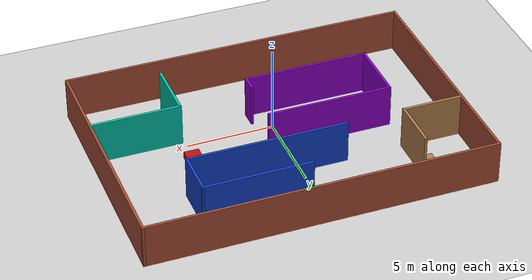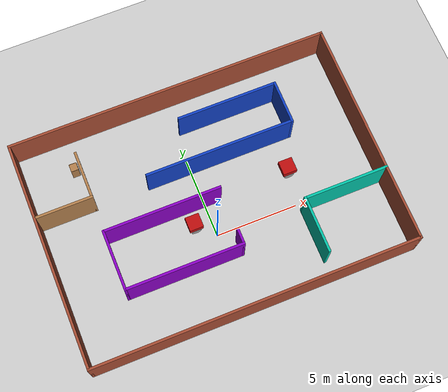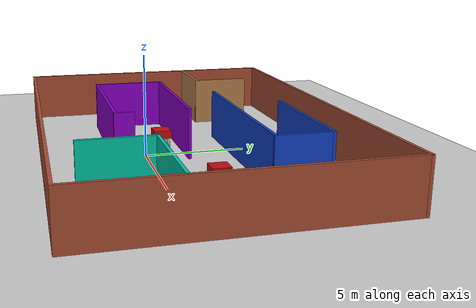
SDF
<sdf version="1.6">
 <world name="default">
  <light name="sun" type="directional">
   <pose>0 0 10 0 -0 0</pose>
   <diffuse>0.8 0.8 0.8 1</diffuse>
   <specular>0.2 0.2 0.2 1</specular>
   <attenuation>
    <range>1000</range>
    <constant>0.9</constant>
    <linear>0.01</linear>
    <quadratic>0.001</quadratic>
   </attenuation>
   <direction>-0.5 0.1 -0.9</direction>
  </light>
  <model name="ground_plane">
   <static>1</static>
   <link name="link">
    <collision name="collision">
     <geometry><plane><normal>0 0 1</normal><size>100 100</size></plane></geometry>
     <surface>
      <contact><collide_bitmask>65535</collide_bitmask></contact>
      <friction><ode><mu>100</mu><mu2>50</mu2></ode></friction>
     </surface>
    </collision>
    <visual name="visual">
     <cast_shadows>0</cast_shadows>
     <geometry><plane><normal>0 0 1</normal><size>100 100</size></plane></geometry>
     <material>
      <script><uri>file://media/materials/scripts/gazebo.material</uri><name>Gazebo/Grey</name></script>
     </material>
    </visual>
   </link>
  </model>
  <gravity>0 0 -9.8</gravity>
  <magnetic_field>6e-06 2.3e-05 -4.2e-05</magnetic_field>
  <atmosphere type="adiabatic"/>
  <physics name="default_physics" default="0" type="ode">
   <max_step_size>0.001</max_step_size>
   <real_time_factor>1</real_time_factor>
   <real_time_update_rate>1000</real_time_update_rate>
  </physics>
  <scene><ambient>0.4 0.4 0.4 1</ambient><background>0.7 0.7 0.7 1</background><shadows>1</shadows></scene>
  <audio><device>default</device></audio>
  <spherical_coordinates>
   <surface_model>EARTH_WGS84</surface_model>
   <latitude_deg>0</latitude_deg>
   <longitude_deg>0</longitude_deg>
   <elevation>0</elevation>
   <heading_deg>0</heading_deg>
  </spherical_coordinates>
  <model name="lilrobo">
   <link name="left_wheel">
    <inertial>
     <mass>0.139839</mass>
     <inertia>
      <ixx>0.00337426</ixx>
      <ixy>0</ixy>
      <ixz>0</ixz>
      <iyy>0.00337426</iyy>
      <iyz>0</iyz>
      <izz>0.00629276</izz>
     </inertia>
    </inertial>
    <pose>-0.540003 0.170784 0.027273 1.5707 -0 0</pose>
    <visual name="visual">
     <geometry><cylinder><radius>0.3</radius><length>0.13984</length></cylinder></geometry>
     <material>
      <lighting>1</lighting>
      <script><uri>file://media/materials/scripts/gazebo.material</uri><name>Gazebo/Grey</name></script>
      <shader type="pixel"><normal_map>__default__</normal_map></shader>
      <ambient>0 0 0 1</ambient>
      <diffuse>0.7 0.7 0.7 1</diffuse>
      <specular>0.01 0.01 0.01 1</specular>
      <emissive>0 0 0 1</emissive>
     </material>
    </visual>
    <collision name="collision">
     <geometry><cylinder><radius>0.3</radius><length>0.13984</length></cylinder></geometry>
     <surface>
      <friction>
       <ode><mu>1</mu><mu2>1</mu2><fdir1>0 0 0</fdir1><slip1>0</slip1><slip2>0</slip2></ode>
       <torsional>
        <coefficient>1</coefficient>
        <patch_radius>0</patch_radius>
        <surface_radius>0</surface_radius>
        <use_patch_radius>1</use_patch_radius>
        <ode><slip>0</slip></ode>
       </torsional>
      </friction>
      <bounce><restitution_coefficient>0</restitution_coefficient><threshold>1e+06</threshold></bounce>
      <contact>
       <collide_without_contact>0</collide_without_contact>
       <collide_without_contact_bitmask>1</collide_without_contact_bitmask>
       <collide_bitmask>1</collide_bitmask>
       <ode>
        <soft_cfm>0</soft_cfm>
        <soft_erp>0.2</soft_erp>
        <kp>1e+13</kp>
        <kd>1</kd>
        <max_vel>0.01</max_vel>
        <min_depth>0</min_depth>
       </ode>
       <bullet>
        <split_impulse>1</split_impulse>
        <split_impulse_penetration_threshold>-0.01</split_impulse_penetration_threshold>
        <soft_cfm>0</soft_cfm>
        <soft_erp>0.2</soft_erp>
        <kp>1e+13</kp>
        <kd>1</kd>
       </bullet>
      </contact>
     </surface>
    </collision>
   </link>
   <link name="right_wheel">
    <inertial>
     <mass>0.139839</mass>
     <inertia>
      <ixx>0.00337426</ixx>
      <ixy>0</ixy>
      <ixz>0</ixz>
      <iyy>0.00337426</iyy>
      <iyz>0</iyz>
      <izz>0.00629276</izz>
     </inertia>
    </inertial>
    <pose>-0.540003 0.809758 0.027273 1.5707 -0 0</pose>
    <visual name="visual">
     <geometry><cylinder><radius>0.3</radius><length>0.13984</length></cylinder></geometry>
     <material>
      <lighting>1</lighting>
      <script><uri>file://media/materials/scripts/gazebo.material</uri><name>Gazebo/Grey</name></script>
      <shader type="pixel"><normal_map>__default__</normal_map></shader>
      <ambient>0 0 0 1</ambient>
      <diffuse>0.7 0.7 0.7 1</diffuse>
      <specular>0.01 0.01 0.01 1</specular>
      <emissive>0 0 0 1</emissive>
     </material>
    </visual>
    <collision name="collision">
     <geometry><cylinder><radius>0.3</radius><length>0.13984</length></cylinder></geometry>
     <surface>
      <friction>
       <ode><mu>1</mu><mu2>1</mu2><fdir1>0 0 0</fdir1><slip1>0</slip1><slip2>0</slip2></ode>
       <torsional>
        <coefficient>1</coefficient>
        <patch_radius>0</patch_radius>
        <surface_radius>0</surface_radius>
        <use_patch_radius>1</use_patch_radius>
        <ode><slip>0</slip></ode>
       </torsional>
      </friction>
      <bounce><restitution_coefficient>0</restitution_coefficient><threshold>1e+06</threshold></bounce>
      <contact>
       <collide_without_contact>0</collide_without_contact>
       <collide_without_contact_bitmask>1</collide_without_contact_bitmask>
       <collide_bitmask>1</collide_bitmask>
       <ode>
        <soft_cfm>0</soft_cfm>
        <soft_erp>0.2</soft_erp>
        <kp>1e+13</kp>
        <kd>1</kd>
        <max_vel>0.01</max_vel>
        <min_depth>0</min_depth>
       </ode>
       <bullet>
        <split_impulse>1</split_impulse>
        <split_impulse_penetration_threshold>-0.01</split_impulse_penetration_threshold>
        <soft_cfm>0</soft_cfm>
        <soft_erp>0.2</soft_erp>
        <kp>1e+13</kp>
        <kd>1</kd>
       </bullet>
      </contact>
     </surface>
    </collision>
   </link>
   <link name="body">
    <inertial>
     <mass>0.0977333</mass>
     <inertia>
      <ixx>0.0034523</ixx>
      <ixy>0</ixy>
      <ixz>0</ixz>
      <iyy>0.00486474</iyy>
      <iyz>0</iyz>
      <izz>0.00546961</izz>
     </inertia>
    </inertial>
    <pose>-0.540003 0.490271 0.194467 0 -0 0</pose>
    <visual name="visual">
     <geometry><box><size>0.65 0.499076 0.418101</size></box></geometry>
     <material>
      <lighting>1</lighting>
      <script><uri>file://media/materials/scripts/gazebo.material</uri><name>Gazebo/Grey</name></script>
      <shader type="pixel"><normal_map>__default__</normal_map></shader>
      <ambient>0.5 0.5 0.5 1</ambient>
      <diffuse>0.7 0.7 0.7 1</diffuse>
      <specular>0.01 0.01 0.01 1</specular>
      <emissive>0 0 0 1</emissive>
     </material>
    </visual>
    <collision name="collision">
     <geometry><box><size>0.65 0.499076 0.418101</size></box></geometry>
     <surface>
      <friction>
       <ode><mu>1</mu><mu2>1</mu2><fdir1>0 0 0</fdir1><slip1>0</slip1><slip2>0</slip2></ode>
       <torsional>
        <coefficient>1</coefficient>
        <patch_radius>0</patch_radius>
        <surface_radius>0</surface_radius>
        <use_patch_radius>1</use_patch_radius>
        <ode><slip>0</slip></ode>
       </torsional>
      </friction>
      <bounce><restitution_coefficient>0</restitution_coefficient><threshold>1e+06</threshold></bounce>
      <contact>
       <collide_without_contact>0</collide_without_contact>
       <collide_without_contact_bitmask>1</collide_without_contact_bitmask>
       <collide_bitmask>1</collide_bitmask>
       <ode>
        <soft_cfm>0</soft_cfm>
        <soft_erp>0.2</soft_erp>
        <kp>1e+13</kp>
        <kd>1</kd>
        <max_vel>0.01</max_vel>
        <min_depth>0</min_depth>
       </ode>
       <bullet>
        <split_impulse>1</split_impulse>
        <split_impulse_penetration_threshold>-0.01</split_impulse_penetration_threshold>
        <soft_cfm>0</soft_cfm>
        <soft_erp>0.2</soft_erp>
        <kp>1e+13</kp>
        <kd>1</kd>
       </bullet>
      </contact>
     </surface>
    </collision>
   </link>
   <link name="head">
    <inertial>
     <mass>0.232242</mass>
     <inertia>
      <ixx>0.0165183</ixx>
      <ixy>0</ixy>
      <ixz>0</ixz>
      <iyy>0.0159662</iyy>
      <iyz>0</iyz>
      <izz>0.0286809</izz>
     </inertia>
    </inertial>
    <pose>-0.540003 0.490271 0.560255 0 -0 0</pose>
    <visual name="visual">
     <geometry><box><size>0.852475 0.869044 0.4</size></box></geometry>
     <material>
      <lighting>1</lighting>
      <script><uri>file://media/materials/scripts/gazebo.material</uri><name>Gazebo/Grey</name></script>
      <ambient>0.745098 0.05098 0.05098 1</ambient>
     </material>
    </visual>
    <collision name="collision">
     <geometry><box><size>0.852475 0.869044 0.313476</size></box></geometry>
     <surface>
      <friction>
       <ode><mu>1</mu><mu2>1</mu2><fdir1>0 0 0</fdir1><slip1>0</slip1><slip2>0</slip2></ode>
       <torsional>
        <coefficient>1</coefficient>
        <patch_radius>0</patch_radius>
        <surface_radius>0</surface_radius>
        <use_patch_radius>1</use_patch_radius>
        <ode><slip>0</slip></ode>
       </torsional>
      </friction>
      <bounce><restitution_coefficient>0</restitution_coefficient><threshold>1e+06</threshold></bounce>
      <contact>
       <collide_without_contact>0</collide_without_contact>
       <collide_without_contact_bitmask>1</collide_without_contact_bitmask>
       <collide_bitmask>1</collide_bitmask>
       <ode>
        <soft_cfm>0</soft_cfm>
        <soft_erp>0.2</soft_erp>
        <kp>1e+13</kp>
        <kd>1</kd>
        <max_vel>0.01</max_vel>
        <min_depth>0</min_depth>
       </ode>
       <bullet>
        <split_impulse>1</split_impulse>
        <split_impulse_penetration_threshold>-0.01</split_impulse_penetration_threshold>
        <soft_cfm>0</soft_cfm>
        <soft_erp>0.2</soft_erp>
        <kp>1e+13</kp>
        <kd>1</kd>
       </bullet>
      </contact>
     </surface>
    </collision>
   </link>
   <joint name="body_JOINT_left_wheel" type="revolute">
    <parent>body</parent>
    <child>left_wheel</child>
    <axis>
     <xyz>1 0 0</xyz>
     <use_parent_model_frame>0</use_parent_model_frame>
     <limit>
      <lower>-1.79769e+308</lower>
      <upper>1.79769e+308</upper>
      <effort>-1</effort>
      <velocity>-1</velocity>
     </limit>
     <dynamics>
      <spring_reference>0</spring_reference>
      <spring_stiffness>0</spring_stiffness>
      <damping>0</damping>
     </dynamics>
    </axis>
    <physics>
     <ode><limit><cfm>0</cfm><erp>0.2</erp></limit><suspension><cfm>0</cfm><erp>0.2</erp></suspension></ode>
    </physics>
   </joint>
   <joint name="body_JOINT_right_wheel" type="revolute">
    <parent>body</parent>
    <child>right_wheel</child>
    <axis>
     <xyz>1 0 0</xyz>
     <use_parent_model_frame>0</use_parent_model_frame>
     <limit>
      <lower>-1.79769e+308</lower>
      <upper>1.79769e+308</upper>
      <effort>-1</effort>
      <velocity>-1</velocity>
     </limit>
     <dynamics>
      <spring_reference>0</spring_reference>
      <spring_stiffness>0</spring_stiffness>
      <damping>0</damping>
     </dynamics>
    </axis>
    <physics>
     <ode><limit><cfm>0</cfm><erp>0.2</erp></limit><suspension><cfm>0</cfm><erp>0.2</erp></suspension></ode>
    </physics>
   </joint>
   <joint name="body_head" type="fixed">
    <parent>body</parent>
    <child>head</child>
    <physics>
     <ode><limit><cfm>0</cfm><erp>0.2</erp></limit><suspension><cfm>0</cfm><erp>0.2</erp></suspension></ode>
    </physics>
   </joint>
   <static>0</static>
   <pose>-0.516047 0.526371 0.272711 9.5e-05 -0 0</pose>
  </model>
  <model name="building">
   <pose>0.40966 1.94902 0 0 -0 0</pose>
   <link name="Wall_1">
    <collision name="Wall_1_Collision">
     <geometry><box><size>14 0.15 2.5</size></box></geometry>
     <pose>0 0 1.25 0 -0 0</pose>
    </collision>
    <visual name="Wall_1_Visual">
     <pose>0 0 1.25 0 -0 0</pose>
     <geometry><box><size>14 0.15 2.5</size></box></geometry>
     <material>
      <script><uri>file://media/materials/scripts/gazebo.material</uri><name>Gazebo/Bricks</name></script>
      <ambient>1 1 1 1</ambient>
     </material>
     <meta><layer>0</layer></meta>
    </visual>
    <pose>-9.925 0 0 0 -0 -1.5708</pose>
   </link>
   <link name="Wall_10">
    <collision name="Wall_10_Collision">
     <geometry><box><size>3.5 0.15 2.5</size></box></geometry>
     <pose>0 0 1.25 0 -0 0</pose>
    </collision>
    <visual name="Wall_10_Visual">
     <pose>0 0 1.25 0 -0 0</pose>
     <geometry><box><size>3.5 0.15 2.5</size></box></geometry>
     <material>
      <script><uri>file://media/materials/scripts/gazebo.material</uri><name>Gazebo/Grey</name></script>
      <ambient>0 0.764706 0.654902 1</ambient>
     </material>
     <meta><layer>0</layer></meta>
    </visual>
    <pose>4.8207 -4.04556 0 0 -0 -1.5708</pose>
   </link>
   <link name="Wall_12">
    <collision name="Wall_12_Collision">
     <geometry><box><size>7.25 0.15 2.5</size></box></geometry>
     <pose>0 0 1.25 0 -0 0</pose>
    </collision>
    <visual name="Wall_12_Visual">
     <pose>0 0 1.25 0 -0 0</pose>
     <geometry><box><size>7.25 0.15 2.5</size></box></geometry>
     <material>
      <script><uri>file://media/materials/scripts/gazebo.material</uri><name>Gazebo/Grey</name></script>
      <ambient>0.541176 0 0.768627 1</ambient>
     </material>
     <meta><layer>0</layer></meta>
    </visual>
    <pose>-3.015 0.056778 0 0 -0 3.14159</pose>
   </link>
   <link name="Wall_13">
    <collision name="Wall_13_Collision">
     <geometry><box><size>3.75 0.15 2.5</size></box></geometry>
     <pose>0 0 1.25 0 -0 0</pose>
    </collision>
    <visual name="Wall_13_Visual">
     <pose>0 0 1.25 0 -0 0</pose>
     <geometry><box><size>3.75 0.15 2.5</size></box></geometry>
     <material>
      <script><uri>file://media/materials/scripts/gazebo.material</uri><name>Gazebo/Grey</name></script>
      <ambient>0.541176 0 0.768627 1</ambient>
     </material>
     <meta><layer>0</layer></meta>
    </visual>
    <pose>-6.565 -1.74322 0 0 -0 -1.5708</pose>
   </link>
   <link name="Wall_14">
    <collision name="Wall_14_Collision">
     <geometry><box><size>7.25 0.15 2.5</size></box></geometry>
     <pose>0 0 1.25 0 -0 0</pose>
    </collision>
    <visual name="Wall_14_Visual">
     <pose>0 0 1.25 0 -0 0</pose>
     <geometry><box><size>7.25 0.15 2.5</size></box></geometry>
     <material>
      <script><uri>file://media/materials/scripts/gazebo.material</uri><name>Gazebo/Grey</name></script>
      <ambient>0.541176 0 0.768627 1</ambient>
     </material>
     <meta><layer>0</layer></meta>
    </visual>
    <pose>-3.015 -3.54322 0 0 -0 0</pose>
   </link>
   <link name="Wall_15">
    <collision name="Wall_15_Collision">
     <geometry><box><size>1 0.15 2.5</size></box></geometry>
     <pose>0 0 1.25 0 -0 0</pose>
    </collision>
    <visual name="Wall_15_Visual">
     <pose>0 0 1.25 0 -0 0</pose>
     <geometry><box><size>1 0.15 2.5</size></box></geometry>
     <material>
      <script><uri>file://media/materials/scripts/gazebo.material</uri><name>Gazebo/Grey</name></script>
      <ambient>0.541176 0 0.768627 1</ambient>
     </material>
     <meta><layer>0</layer></meta>
    </visual>
    <pose>0.535003 -3.11822 0 0 -0 1.5708</pose>
   </link>
   <link name="Wall_19">
    <collision name="Wall_19_Collision">
     <geometry><box><size>9.25 0.15 2.5</size></box></geometry>
     <pose>0 0 1.25 0 -0 0</pose>
    </collision>
    <visual name="Wall_19_Visual">
     <pose>0 0 1.25 0 -0 0</pose>
     <geometry><box><size>9.25 0.15 2.5</size></box></geometry>
     <material>
      <script><uri>file://media/materials/scripts/gazebo.material</uri><name>Gazebo/Grey</name></script>
      <ambient>0.0666667 0.25098 0.768627 1</ambient>
     </material>
     <meta><layer>0</layer></meta>
    </visual>
    <pose>1.46388 2.2991 0 0 -0 0</pose>
   </link>
   <link name="Wall_2">
    <collision name="Wall_2_Collision">
     <geometry><box><size>20 0.15 2.5</size></box></geometry>
     <pose>0 0 1.25 0 -0 0</pose>
    </collision>
    <visual name="Wall_2_Visual">
     <pose>0 0 1.25 0 -0 0</pose>
     <geometry><box><size>20 0.15 2.5</size></box></geometry>
     <material>
      <script><uri>file://media/materials/scripts/gazebo.material</uri><name>Gazebo/Bricks</name></script>
      <ambient>1 1 1 1</ambient>
     </material>
     <meta><layer>0</layer></meta>
    </visual>
    <pose>-0 -6.925 0 0 -0 0</pose>
   </link>
   <link name="Wall_20">
    <collision name="Wall_20_Collision">
     <geometry><box><size>2.75 0.15 2.5</size></box></geometry>
     <pose>0 0 1.25 0 -0 0</pose>
    </collision>
    <visual name="Wall_20_Visual">
     <pose>0 0 1.25 0 -0 0</pose>
     <geometry><box><size>2.75 0.15 2.5</size></box></geometry>
     <material>
      <script><uri>file://media/materials/scripts/gazebo.material</uri><name>Gazebo/Grey</name></script>
      <ambient>0.0666667 0.25098 0.768627 1</ambient>
     </material>
     <meta><layer>0</layer></meta>
    </visual>
    <pose>6.01388 3.5991 0 0 -0 1.5708</pose>
   </link>
   <link name="Wall_21">
    <collision name="Wall_21_Collision">
     <geometry><box><size>6.25 0.15 2.5</size></box></geometry>
     <pose>0 0 1.25 0 -0 0</pose>
    </collision>
    <visual name="Wall_21_Visual">
     <pose>0 0 1.25 0 -0 0</pose>
     <geometry><box><size>6.25 0.15 2.5</size></box></geometry>
     <material>
      <script><uri>file://media/materials/scripts/gazebo.material</uri><name>Gazebo/Grey</name></script>
      <ambient>0.0666667 0.25098 0.768627 1</ambient>
     </material>
     <meta><layer>0</layer></meta>
    </visual>
    <pose>2.96388 4.8991 0 0 -0 3.14159</pose>
   </link>
   <link name="Wall_3">
    <collision name="Wall_3_Collision">
     <geometry><box><size>14 0.15 2.5</size></box></geometry>
     <pose>0 0 1.25 0 -0 0</pose>
    </collision>
    <visual name="Wall_3_Visual">
     <pose>0 0 1.25 0 -0 0</pose>
     <geometry><box><size>14 0.15 2.5</size></box></geometry>
     <material>
      <script><uri>file://media/materials/scripts/gazebo.material</uri><name>Gazebo/Bricks</name></script>
      <ambient>1 1 1 1</ambient>
     </material>
     <meta><layer>0</layer></meta>
    </visual>
    <pose>9.925 0 0 0 -0 1.5708</pose>
   </link>
   <link name="Wall_4">
    <collision name="Wall_4_Collision">
     <geometry><box><size>20 0.15 2.5</size></box></geometry>
     <pose>0 0 1.25 0 -0 0</pose>
    </collision>
    <visual name="Wall_4_Visual">
     <pose>0 0 1.25 0 -0 0</pose>
     <geometry><box><size>20 0.15 2.5</size></box></geometry>
     <material>
      <script><uri>file://media/materials/scripts/gazebo.material</uri><name>Gazebo/Bricks</name></script>
      <ambient>1 1 1 1</ambient>
     </material>
     <meta><layer>0</layer></meta>
    </visual>
    <pose>-0 6.925 0 0 -0 3.14159</pose>
   </link>
   <link name="Wall_6">
    <collision name="Wall_6_Collision">
     <geometry><box><size>3.5 0.15 2.5</size></box></geometry>
     <pose>0 0 1.25 0 -0 0</pose>
    </collision>
    <visual name="Wall_6_Visual">
     <pose>0 0 1.25 0 -0 0</pose>
     <geometry><box><size>3.5 0.15 2.5</size></box></geometry>
     <material>
      <script><uri>file://media/materials/scripts/gazebo.material</uri><name>Gazebo/Wood</name></script>
      <ambient>1 1 1 1</ambient>
     </material>
     <meta><layer>0</layer></meta>
    </visual>
    <pose>-8.14663 2.24138 0 0 -0 0</pose>
   </link>
   <link name="Wall_7">
    <collision name="Wall_7_Collision">
     <geometry><box><size>3 0.15 2.5</size></box></geometry>
     <pose>0 0 1.25 0 -0 0</pose>
    </collision>
    <visual name="Wall_7_Visual">
     <pose>0 0 1.25 0 -0 0</pose>
     <geometry><box><size>3 0.15 2.5</size></box></geometry>
     <material>
      <script><uri>file://media/materials/scripts/gazebo.material</uri><name>Gazebo/Wood</name></script>
      <ambient>1 1 1 1</ambient>
     </material>
     <meta><layer>0</layer></meta>
    </visual>
    <pose>-6.47163 3.66638 0 0 -0 1.5708</pose>
   </link>
   <link name="Wall_9">
    <collision name="Wall_9_Collision">
     <geometry><box><size>5.25 0.15 2.5</size></box></geometry>
     <pose>0 0 1.25 0 -0 0</pose>
    </collision>
    <visual name="Wall_9_Visual">
     <pose>0 0 1.25 0 -0 0</pose>
     <geometry><box><size>5.25 0.15 2.5</size></box></geometry>
     <material>
      <script><uri>file://media/materials/scripts/gazebo.material</uri><name>Gazebo/Grey</name></script>
      <ambient>0 0.764706 0.654902 1</ambient>
     </material>
     <meta><layer>0</layer></meta>
    </visual>
    <pose>7.3707 -2.37056 0 0 -0 3.14159</pose>
   </link>
   <static>1</static>
  </model>
  <model name="cabinet">
   <static>1</static>
   <link name="cabinet_bottom_plate">
    <inertial>
     <pose>0 0 -1 0 -0 0</pose>
     <inertia><ixx>2.05</ixx><ixy>0</ixy><ixz>0</ixz><iyy>2.05</iyy><iyz>0</iyz><izz>2.05</izz></inertia>
     <mass>25</mass>
    </inertial>
    <collision name="cabinet_bottom_plate_geom">
     <pose>0 0 0.01 0 -0 0</pose>
     <geometry><box><size>0.45 0.45 0.02</size></box></geometry>
    </collision>
    <visual name="cabinet_bottom_plate_geom_visual">
     <pose>0 0 0.01 0 -0 0</pose>
     <geometry><box><size>0.45 0.45 0.02</size></box></geometry>
     <material>
      <script><uri>file://media/materials/scripts/gazebo.material</uri><name>Gazebo/Wood</name></script>
     </material>
    </visual>
    <collision name="cabinet_bottom_plate_geom_cabinet_back_plate">
     <pose>0.235 0 0.51 0 -0 0</pose>
     <geometry><box><size>0.02 0.45 1.02</size></box></geometry>
    </collision>
    <visual name="cabinet_bottom_plate_geom_cabinet_back_plate_visual">
     <pose>0.235 0 0.51 0 -0 0</pose>
     <geometry><box><size>0.02 0.45 1.02</size></box></geometry>
     <material>
      <script><uri>file://media/materials/scripts/gazebo.material</uri><name>Gazebo/Wood</name></script>
     </material>
    </visual>
    <collision name="cabinet_bottom_plate_geom_cabinet_left_plate">
     <pose>0 0.235 0.51 0 -0 0</pose>
     <geometry><box><size>0.45 0.02 1.02</size></box></geometry>
    </collision>
    <visual name="cabinet_bottom_plate_geom_cabinet_left_plate_visual">
     <pose>0 0.235 0.51 0 -0 0</pose>
     <geometry><box><size>0.45 0.02 1.02</size></box></geometry>
     <material>
      <script><uri>file://media/materials/scripts/gazebo.material</uri><name>Gazebo/Wood</name></script>
     </material>
    </visual>
    <collision name="cabinet_bottom_plate_geom_cabinet_middle_plate">
     <pose>0 0 0.51 0 -0 0</pose>
     <geometry><box><size>0.45 0.45 0.02</size></box></geometry>
    </collision>
    <visual name="cabinet_bottom_plate_geom_cabinet_middle_plate_visual">
     <pose>0 0 0.51 0 -0 0</pose>
     <geometry><box><size>0.45 0.45 0.02</size></box></geometry>
     <material>
      <script><uri>file://media/materials/scripts/gazebo.material</uri><name>Gazebo/Wood</name></script>
     </material>
    </visual>
    <collision name="cabinet_bottom_plate_geom_cabinet_right_plate">
     <pose>0 -0.235 0.51 0 -0 0</pose>
     <geometry><box><size>0.45 0.02 1.02</size></box></geometry>
    </collision>
    <visual name="cabinet_bottom_plate_geom_cabinet_right_plate_visual">
     <pose>0 -0.235 0.51 0 -0 0</pose>
     <geometry><box><size>0.45 0.02 1.02</size></box></geometry>
     <material>
      <script><uri>file://media/materials/scripts/gazebo.material</uri><name>Gazebo/Wood</name></script>
     </material>
    </visual>
    <collision name="cabinet_bottom_plate_geom_cabinet_top_plate">
     <pose>0 0 1.01 0 -0 0</pose>
     <geometry><box><size>0.45 0.45 0.02</size></box></geometry>
    </collision>
    <visual name="cabinet_bottom_plate_geom_cabinet_top_plate_visual">
     <pose>0 0 1.01 0 -0 0</pose>
     <geometry><box><size>0.45 0.45 0.02</size></box></geometry>
     <material>
      <script><uri>file://media/materials/scripts/gazebo.material</uri><name>Gazebo/Wood</name></script>
     </material>
    </visual>
   </link>
   <pose>-6.44931 6.85151 0 0 -0 0</pose>
  </model>
  <model name="lilrobo_clone">
   <link name="left_wheel">
    <inertial>
     <mass>0.139839</mass>
     <inertia>
      <ixx>0.00337426</ixx>
      <ixy>0</ixy>
      <ixz>0</ixz>
      <iyy>0.00337426</iyy>
      <iyz>0</iyz>
      <izz>0.00629276</izz>
     </inertia>
    </inertial>
    <pose>-0.540003 0.170784 0.027273 1.5707 -0 0</pose>
    <visual name="visual">
     <geometry><cylinder><radius>0.3</radius><length>0.13984</length></cylinder></geometry>
     <material>
      <lighting>1</lighting>
      <script><uri>file://media/materials/scripts/gazebo.material</uri><name>Gazebo/Grey</name></script>
      <shader type="pixel"><normal_map>__default__</normal_map></shader>
      <ambient>0 0 0 1</ambient>
      <diffuse>0.7 0.7 0.7 1</diffuse>
      <specular>0.01 0.01 0.01 1</specular>
      <emissive>0 0 0 1</emissive>
     </material>
    </visual>
    <collision name="collision">
     <geometry><cylinder><radius>0.3</radius><length>0.13984</length></cylinder></geometry>
     <surface>
      <friction>
       <ode><mu>1</mu><mu2>1</mu2><fdir1>0 0 0</fdir1><slip1>0</slip1><slip2>0</slip2></ode>
       <torsional>
        <coefficient>1</coefficient>
        <patch_radius>0</patch_radius>
        <surface_radius>0</surface_radius>
        <use_patch_radius>1</use_patch_radius>
        <ode><slip>0</slip></ode>
       </torsional>
      </friction>
      <bounce><restitution_coefficient>0</restitution_coefficient><threshold>1e+06</threshold></bounce>
      <contact>
       <collide_without_contact>0</collide_without_contact>
       <collide_without_contact_bitmask>1</collide_without_contact_bitmask>
       <collide_bitmask>1</collide_bitmask>
       <ode>
        <soft_cfm>0</soft_cfm>
        <soft_erp>0.2</soft_erp>
        <kp>1e+13</kp>
        <kd>1</kd>
        <max_vel>0.01</max_vel>
        <min_depth>0</min_depth>
       </ode>
       <bullet>
        <split_impulse>1</split_impulse>
        <split_impulse_penetration_threshold>-0.01</split_impulse_penetration_threshold>
        <soft_cfm>0</soft_cfm>
        <soft_erp>0.2</soft_erp>
        <kp>1e+13</kp>
        <kd>1</kd>
       </bullet>
      </contact>
     </surface>
    </collision>
   </link>
   <link name="right_wheel">
    <inertial>
     <mass>0.139839</mass>
     <inertia>
      <ixx>0.00337426</ixx>
      <ixy>0</ixy>
      <ixz>0</ixz>
      <iyy>0.00337426</iyy>
      <iyz>0</iyz>
      <izz>0.00629276</izz>
     </inertia>
    </inertial>
    <pose>-0.540003 0.809758 0.027273 1.5707 -0 0</pose>
    <visual name="visual">
     <geometry><cylinder><radius>0.3</radius><length>0.13984</length></cylinder></geometry>
     <material>
      <lighting>1</lighting>
      <script><uri>file://media/materials/scripts/gazebo.material</uri><name>Gazebo/Grey</name></script>
      <shader type="pixel"><normal_map>__default__</normal_map></shader>
      <ambient>0 0 0 1</ambient>
      <diffuse>0.7 0.7 0.7 1</diffuse>
      <specular>0.01 0.01 0.01 1</specular>
      <emissive>0 0 0 1</emissive>
     </material>
    </visual>
    <collision name="collision">
     <geometry><cylinder><radius>0.3</radius><length>0.13984</length></cylinder></geometry>
     <surface>
      <friction>
       <ode><mu>1</mu><mu2>1</mu2><fdir1>0 0 0</fdir1><slip1>0</slip1><slip2>0</slip2></ode>
       <torsional>
        <coefficient>1</coefficient>
        <patch_radius>0</patch_radius>
        <surface_radius>0</surface_radius>
        <use_patch_radius>1</use_patch_radius>
        <ode><slip>0</slip></ode>
       </torsional>
      </friction>
      <bounce><restitution_coefficient>0</restitution_coefficient><threshold>1e+06</threshold></bounce>
      <contact>
       <collide_without_contact>0</collide_without_contact>
       <collide_without_contact_bitmask>1</collide_without_contact_bitmask>
       <collide_bitmask>1</collide_bitmask>
       <ode>
        <soft_cfm>0</soft_cfm>
        <soft_erp>0.2</soft_erp>
        <kp>1e+13</kp>
        <kd>1</kd>
        <max_vel>0.01</max_vel>
        <min_depth>0</min_depth>
       </ode>
       <bullet>
        <split_impulse>1</split_impulse>
        <split_impulse_penetration_threshold>-0.01</split_impulse_penetration_threshold>
        <soft_cfm>0</soft_cfm>
        <soft_erp>0.2</soft_erp>
        <kp>1e+13</kp>
        <kd>1</kd>
       </bullet>
      </contact>
     </surface>
    </collision>
   </link>
   <link name="body">
    <inertial>
     <mass>0.0977333</mass>
     <inertia>
      <ixx>0.0034523</ixx>
      <ixy>0</ixy>
      <ixz>0</ixz>
      <iyy>0.00486474</iyy>
      <iyz>0</iyz>
      <izz>0.00546961</izz>
     </inertia>
    </inertial>
    <pose>-0.540003 0.490271 0.194467 0 -0 0</pose>
    <visual name="visual">
     <geometry><box><size>0.65 0.499076 0.418101</size></box></geometry>
     <material>
      <lighting>1</lighting>
      <script><uri>file://media/materials/scripts/gazebo.material</uri><name>Gazebo/Grey</name></script>
      <shader type="pixel"><normal_map>__default__</normal_map></shader>
      <ambient>0.5 0.5 0.5 1</ambient>
      <diffuse>0.7 0.7 0.7 1</diffuse>
      <specular>0.01 0.01 0.01 1</specular>
      <emissive>0 0 0 1</emissive>
     </material>
    </visual>
    <collision name="collision">
     <geometry><box><size>0.65 0.499076 0.418101</size></box></geometry>
     <surface>
      <friction>
       <ode><mu>1</mu><mu2>1</mu2><fdir1>0 0 0</fdir1><slip1>0</slip1><slip2>0</slip2></ode>
       <torsional>
        <coefficient>1</coefficient>
        <patch_radius>0</patch_radius>
        <surface_radius>0</surface_radius>
        <use_patch_radius>1</use_patch_radius>
        <ode><slip>0</slip></ode>
       </torsional>
      </friction>
      <bounce><restitution_coefficient>0</restitution_coefficient><threshold>1e+06</threshold></bounce>
      <contact>
       <collide_without_contact>0</collide_without_contact>
       <collide_without_contact_bitmask>1</collide_without_contact_bitmask>
       <collide_bitmask>1</collide_bitmask>
       <ode>
        <soft_cfm>0</soft_cfm>
        <soft_erp>0.2</soft_erp>
        <kp>1e+13</kp>
        <kd>1</kd>
        <max_vel>0.01</max_vel>
        <min_depth>0</min_depth>
       </ode>
       <bullet>
        <split_impulse>1</split_impulse>
        <split_impulse_penetration_threshold>-0.01</split_impulse_penetration_threshold>
        <soft_cfm>0</soft_cfm>
        <soft_erp>0.2</soft_erp>
        <kp>1e+13</kp>
        <kd>1</kd>
       </bullet>
      </contact>
     </surface>
    </collision>
   </link>
   <link name="head">
    <inertial>
     <mass>0.232242</mass>
     <inertia>
      <ixx>0.0165183</ixx>
      <ixy>0</ixy>
      <ixz>0</ixz>
      <iyy>0.0159662</iyy>
      <iyz>0</iyz>
      <izz>0.0286809</izz>
     </inertia>
    </inertial>
    <pose>-0.540003 0.490271 0.560255 0 -0 0</pose>
    <visual name="visual">
     <geometry><box><size>0.852475 0.869044 0.4</size></box></geometry>
     <material>
      <lighting>1</lighting>
      <script><uri>file://media/materials/scripts/gazebo.material</uri><name>Gazebo/Grey</name></script>
      <ambient>0.745098 0.05098 0.05098 1</ambient>
     </material>
    </visual>
    <collision name="collision">
     <geometry><box><size>0.852475 0.869044 0.313476</size></box></geometry>
     <surface>
      <friction>
       <ode><mu>1</mu><mu2>1</mu2><fdir1>0 0 0</fdir1><slip1>0</slip1><slip2>0</slip2></ode>
       <torsional>
        <coefficient>1</coefficient>
        <patch_radius>0</patch_radius>
        <surface_radius>0</surface_radius>
        <use_patch_radius>1</use_patch_radius>
        <ode><slip>0</slip></ode>
       </torsional>
      </friction>
      <bounce><restitution_coefficient>0</restitution_coefficient><threshold>1e+06</threshold></bounce>
      <contact>
       <collide_without_contact>0</collide_without_contact>
       <collide_without_contact_bitmask>1</collide_without_contact_bitmask>
       <collide_bitmask>1</collide_bitmask>
       <ode>
        <soft_cfm>0</soft_cfm>
        <soft_erp>0.2</soft_erp>
        <kp>1e+13</kp>
        <kd>1</kd>
        <max_vel>0.01</max_vel>
        <min_depth>0</min_depth>
       </ode>
       <bullet>
        <split_impulse>1</split_impulse>
        <split_impulse_penetration_threshold>-0.01</split_impulse_penetration_threshold>
        <soft_cfm>0</soft_cfm>
        <soft_erp>0.2</soft_erp>
        <kp>1e+13</kp>
        <kd>1</kd>
       </bullet>
      </contact>
     </surface>
    </collision>
   </link>
   <joint name="body_JOINT_left_wheel" type="revolute">
    <parent>body</parent>
    <child>left_wheel</child>
    <axis>
     <xyz>1 0 0</xyz>
     <use_parent_model_frame>0</use_parent_model_frame>
     <limit>
      <lower>-1.79769e+308</lower>
      <upper>1.79769e+308</upper>
      <effort>-1</effort>
      <velocity>-1</velocity>
     </limit>
     <dynamics>
      <spring_reference>0</spring_reference>
      <spring_stiffness>0</spring_stiffness>
      <damping>0</damping>
     </dynamics>
    </axis>
    <physics>
     <ode><limit><cfm>0</cfm><erp>0.2</erp></limit><suspension><cfm>0</cfm><erp>0.2</erp></suspension></ode>
    </physics>
   </joint>
   <joint name="body_JOINT_right_wheel" type="revolute">
    <parent>body</parent>
    <child>right_wheel</child>
    <axis>
     <xyz>1 0 0</xyz>
     <use_parent_model_frame>0</use_parent_model_frame>
     <limit>
      <lower>-1.79769e+308</lower>
      <upper>1.79769e+308</upper>
      <effort>-1</effort>
      <velocity>-1</velocity>
     </limit>
     <dynamics>
      <spring_reference>0</spring_reference>
      <spring_stiffness>0</spring_stiffness>
      <damping>0</damping>
     </dynamics>
    </axis>
    <physics>
     <ode><limit><cfm>0</cfm><erp>0.2</erp></limit><suspension><cfm>0</cfm><erp>0.2</erp></suspension></ode>
    </physics>
   </joint>
   <joint name="body_head" type="fixed">
    <parent>body</parent>
    <child>head</child>
    <physics>
     <ode><limit><cfm>0</cfm><erp>0.2</erp></limit><suspension><cfm>0</cfm><erp>0.2</erp></suspension></ode>
    </physics>
   </joint>
   <static>0</static>
   <pose>5.91192 1.69506 0.272711 9.7e-05 -0 0</pose>
  </model>
 </world>
</sdf>
